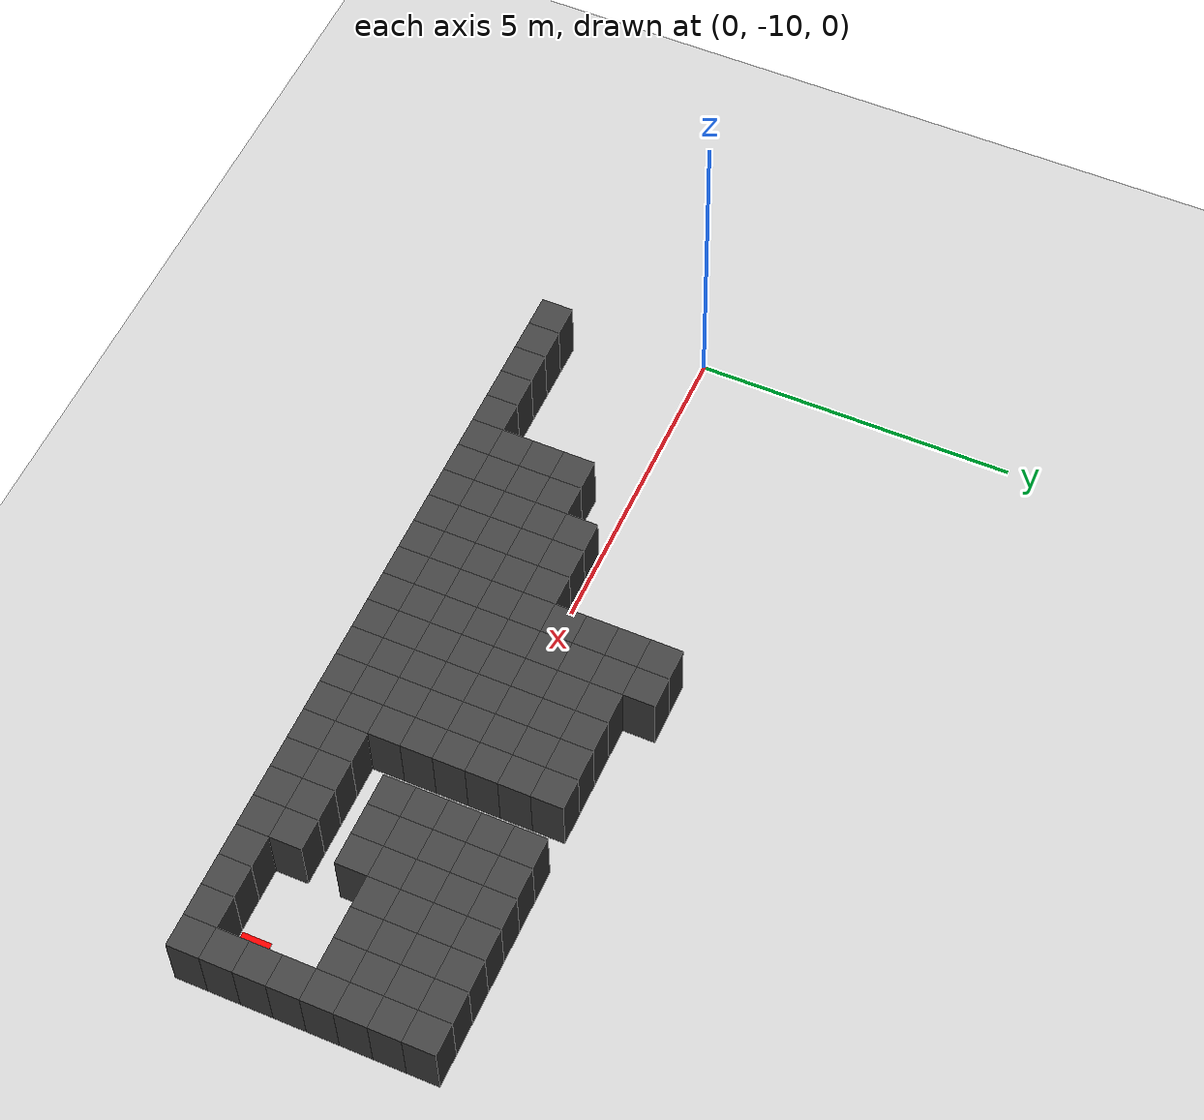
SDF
<sdf version="1.7">
 <world name="map_14495">
  <model name="ground_plane">
   <static>true</static>
   <link name="link">
    <collision name="collision">
     <geometry><plane><normal>0 0 1</normal><size>200 200</size></plane></geometry>
    </collision>
    <visual name="visual">
     <geometry><plane><normal>0 0 1</normal><size>200 200</size></plane></geometry>
     <material><ambient>0.8 0.8 0.8 1</ambient><diffuse>0.8 0.8 0.8 1</diffuse></material>
    </visual>
   </link>
  </model>
  <model name="maze_environment">
   <static>true</static>
   <link name="wall_1471">
    <pose>5.750 -8.250 0.500 0 0 0</pose>
    <collision name="col"><geometry><box><size>0.5 0.5 1.0</size></box></geometry></collision>
    <visual name="vis">
     <geometry><box><size>0.5 0.5 1.0</size></box></geometry>
     <material><ambient>0.15 0.15 0.15 1</ambient><diffuse>0.25 0.25 0.25 1</diffuse></material>
    </visual>
   </link>
   <link name="wall_1472">
    <pose>6.250 -8.250 0.500 0 0 0</pose>
    <collision name="col"><geometry><box><size>0.5 0.5 1.0</size></box></geometry></collision>
    <visual name="vis">
     <geometry><box><size>0.5 0.5 1.0</size></box></geometry>
     <material><ambient>0.15 0.15 0.15 1</ambient><diffuse>0.25 0.25 0.25 1</diffuse></material>
    </visual>
   </link>
   <link name="wall_1502">
    <pose>5.750 -8.750 0.500 0 0 0</pose>
    <collision name="col"><geometry><box><size>0.5 0.5 1.0</size></box></geometry></collision>
    <visual name="vis">
     <geometry><box><size>0.5 0.5 1.0</size></box></geometry>
     <material><ambient>0.15 0.15 0.15 1</ambient><diffuse>0.25 0.25 0.25 1</diffuse></material>
    </visual>
   </link>
   <link name="wall_1503">
    <pose>6.250 -8.750 0.500 0 0 0</pose>
    <collision name="col"><geometry><box><size>0.5 0.5 1.0</size></box></geometry></collision>
    <visual name="vis">
     <geometry><box><size>0.5 0.5 1.0</size></box></geometry>
     <material><ambient>0.15 0.15 0.15 1</ambient><diffuse>0.25 0.25 0.25 1</diffuse></material>
    </visual>
   </link>
   <link name="wall_1504">
    <pose>6.750 -8.750 0.500 0 0 0</pose>
    <collision name="col"><geometry><box><size>0.5 0.5 1.0</size></box></geometry></collision>
    <visual name="vis">
     <geometry><box><size>0.5 0.5 1.0</size></box></geometry>
     <material><ambient>0.15 0.15 0.15 1</ambient><diffuse>0.25 0.25 0.25 1</diffuse></material>
    </visual>
   </link>
   <link name="wall_1505">
    <pose>7.250 -8.750 0.500 0 0 0</pose>
    <collision name="col"><geometry><box><size>0.5 0.5 1.0</size></box></geometry></collision>
    <visual name="vis">
     <geometry><box><size>0.5 0.5 1.0</size></box></geometry>
     <material><ambient>0.15 0.15 0.15 1</ambient><diffuse>0.25 0.25 0.25 1</diffuse></material>
    </visual>
   </link>
   <link name="wall_1506">
    <pose>7.750 -8.750 0.500 0 0 0</pose>
    <collision name="col"><geometry><box><size>0.5 0.5 1.0</size></box></geometry></collision>
    <visual name="vis">
     <geometry><box><size>0.5 0.5 1.0</size></box></geometry>
     <material><ambient>0.15 0.15 0.15 1</ambient><diffuse>0.25 0.25 0.25 1</diffuse></material>
    </visual>
   </link>
   <link name="wall_1507">
    <pose>8.250 -8.750 0.500 0 0 0</pose>
    <collision name="col"><geometry><box><size>0.5 0.5 1.0</size></box></geometry></collision>
    <visual name="vis">
     <geometry><box><size>0.5 0.5 1.0</size></box></geometry>
     <material><ambient>0.15 0.15 0.15 1</ambient><diffuse>0.25 0.25 0.25 1</diffuse></material>
    </visual>
   </link>
   <link name="wall_1508">
    <pose>9.250 -8.750 0.500 0 0 0</pose>
    <collision name="col"><geometry><box><size>0.5 0.5 1.0</size></box></geometry></collision>
    <visual name="vis">
     <geometry><box><size>0.5 0.5 1.0</size></box></geometry>
     <material><ambient>0.15 0.15 0.15 1</ambient><diffuse>0.25 0.25 0.25 1</diffuse></material>
    </visual>
   </link>
   <link name="wall_1509">
    <pose>9.750 -8.750 0.500 0 0 0</pose>
    <collision name="col"><geometry><box><size>0.5 0.5 1.0</size></box></geometry></collision>
    <visual name="vis">
     <geometry><box><size>0.5 0.5 1.0</size></box></geometry>
     <material><ambient>0.15 0.15 0.15 1</ambient><diffuse>0.25 0.25 0.25 1</diffuse></material>
    </visual>
   </link>
   <link name="wall_1510">
    <pose>10.250 -8.750 0.500 0 0 0</pose>
    <collision name="col"><geometry><box><size>0.5 0.5 1.0</size></box></geometry></collision>
    <visual name="vis">
     <geometry><box><size>0.5 0.5 1.0</size></box></geometry>
     <material><ambient>0.15 0.15 0.15 1</ambient><diffuse>0.25 0.25 0.25 1</diffuse></material>
    </visual>
   </link>
   <link name="wall_1511">
    <pose>10.750 -8.750 0.500 0 0 0</pose>
    <collision name="col"><geometry><box><size>0.5 0.5 1.0</size></box></geometry></collision>
    <visual name="vis">
     <geometry><box><size>0.5 0.5 1.0</size></box></geometry>
     <material><ambient>0.15 0.15 0.15 1</ambient><diffuse>0.25 0.25 0.25 1</diffuse></material>
    </visual>
   </link>
   <link name="wall_1512">
    <pose>11.250 -8.750 0.500 0 0 0</pose>
    <collision name="col"><geometry><box><size>0.5 0.5 1.0</size></box></geometry></collision>
    <visual name="vis">
     <geometry><box><size>0.5 0.5 1.0</size></box></geometry>
     <material><ambient>0.15 0.15 0.15 1</ambient><diffuse>0.25 0.25 0.25 1</diffuse></material>
    </visual>
   </link>
   <link name="wall_1513">
    <pose>11.750 -8.750 0.500 0 0 0</pose>
    <collision name="col"><geometry><box><size>0.5 0.5 1.0</size></box></geometry></collision>
    <visual name="vis">
     <geometry><box><size>0.5 0.5 1.0</size></box></geometry>
     <material><ambient>0.15 0.15 0.15 1</ambient><diffuse>0.25 0.25 0.25 1</diffuse></material>
    </visual>
   </link>
   <link name="wall_1514">
    <pose>12.250 -8.750 0.500 0 0 0</pose>
    <collision name="col"><geometry><box><size>0.5 0.5 1.0</size></box></geometry></collision>
    <visual name="vis">
     <geometry><box><size>0.5 0.5 1.0</size></box></geometry>
     <material><ambient>0.15 0.15 0.15 1</ambient><diffuse>0.25 0.25 0.25 1</diffuse></material>
    </visual>
   </link>
   <link name="wall_1533">
    <pose>5.750 -9.250 0.500 0 0 0</pose>
    <collision name="col"><geometry><box><size>0.5 0.5 1.0</size></box></geometry></collision>
    <visual name="vis">
     <geometry><box><size>0.5 0.5 1.0</size></box></geometry>
     <material><ambient>0.15 0.15 0.15 1</ambient><diffuse>0.25 0.25 0.25 1</diffuse></material>
    </visual>
   </link>
   <link name="wall_1534">
    <pose>6.250 -9.250 0.500 0 0 0</pose>
    <collision name="col"><geometry><box><size>0.5 0.5 1.0</size></box></geometry></collision>
    <visual name="vis">
     <geometry><box><size>0.5 0.5 1.0</size></box></geometry>
     <material><ambient>0.15 0.15 0.15 1</ambient><diffuse>0.25 0.25 0.25 1</diffuse></material>
    </visual>
   </link>
   <link name="wall_1535">
    <pose>6.750 -9.250 0.500 0 0 0</pose>
    <collision name="col"><geometry><box><size>0.5 0.5 1.0</size></box></geometry></collision>
    <visual name="vis">
     <geometry><box><size>0.5 0.5 1.0</size></box></geometry>
     <material><ambient>0.15 0.15 0.15 1</ambient><diffuse>0.25 0.25 0.25 1</diffuse></material>
    </visual>
   </link>
   <link name="wall_1536">
    <pose>7.250 -9.250 0.500 0 0 0</pose>
    <collision name="col"><geometry><box><size>0.5 0.5 1.0</size></box></geometry></collision>
    <visual name="vis">
     <geometry><box><size>0.5 0.5 1.0</size></box></geometry>
     <material><ambient>0.15 0.15 0.15 1</ambient><diffuse>0.25 0.25 0.25 1</diffuse></material>
    </visual>
   </link>
   <link name="wall_1537">
    <pose>7.750 -9.250 0.500 0 0 0</pose>
    <collision name="col"><geometry><box><size>0.5 0.5 1.0</size></box></geometry></collision>
    <visual name="vis">
     <geometry><box><size>0.5 0.5 1.0</size></box></geometry>
     <material><ambient>0.15 0.15 0.15 1</ambient><diffuse>0.25 0.25 0.25 1</diffuse></material>
    </visual>
   </link>
   <link name="wall_1538">
    <pose>8.250 -9.250 0.500 0 0 0</pose>
    <collision name="col"><geometry><box><size>0.5 0.5 1.0</size></box></geometry></collision>
    <visual name="vis">
     <geometry><box><size>0.5 0.5 1.0</size></box></geometry>
     <material><ambient>0.15 0.15 0.15 1</ambient><diffuse>0.25 0.25 0.25 1</diffuse></material>
    </visual>
   </link>
   <link name="wall_1539">
    <pose>9.250 -9.250 0.500 0 0 0</pose>
    <collision name="col"><geometry><box><size>0.5 0.5 1.0</size></box></geometry></collision>
    <visual name="vis">
     <geometry><box><size>0.5 0.5 1.0</size></box></geometry>
     <material><ambient>0.15 0.15 0.15 1</ambient><diffuse>0.25 0.25 0.25 1</diffuse></material>
    </visual>
   </link>
   <link name="wall_1540">
    <pose>9.750 -9.250 0.500 0 0 0</pose>
    <collision name="col"><geometry><box><size>0.5 0.5 1.0</size></box></geometry></collision>
    <visual name="vis">
     <geometry><box><size>0.5 0.5 1.0</size></box></geometry>
     <material><ambient>0.15 0.15 0.15 1</ambient><diffuse>0.25 0.25 0.25 1</diffuse></material>
    </visual>
   </link>
   <link name="wall_1541">
    <pose>10.250 -9.250 0.500 0 0 0</pose>
    <collision name="col"><geometry><box><size>0.5 0.5 1.0</size></box></geometry></collision>
    <visual name="vis">
     <geometry><box><size>0.5 0.5 1.0</size></box></geometry>
     <material><ambient>0.15 0.15 0.15 1</ambient><diffuse>0.25 0.25 0.25 1</diffuse></material>
    </visual>
   </link>
   <link name="wall_1542">
    <pose>10.750 -9.250 0.500 0 0 0</pose>
    <collision name="col"><geometry><box><size>0.5 0.5 1.0</size></box></geometry></collision>
    <visual name="vis">
     <geometry><box><size>0.5 0.5 1.0</size></box></geometry>
     <material><ambient>0.15 0.15 0.15 1</ambient><diffuse>0.25 0.25 0.25 1</diffuse></material>
    </visual>
   </link>
   <link name="wall_1543">
    <pose>11.250 -9.250 0.500 0 0 0</pose>
    <collision name="col"><geometry><box><size>0.5 0.5 1.0</size></box></geometry></collision>
    <visual name="vis">
     <geometry><box><size>0.5 0.5 1.0</size></box></geometry>
     <material><ambient>0.15 0.15 0.15 1</ambient><diffuse>0.25 0.25 0.25 1</diffuse></material>
    </visual>
   </link>
   <link name="wall_1544">
    <pose>11.750 -9.250 0.500 0 0 0</pose>
    <collision name="col"><geometry><box><size>0.5 0.5 1.0</size></box></geometry></collision>
    <visual name="vis">
     <geometry><box><size>0.5 0.5 1.0</size></box></geometry>
     <material><ambient>0.15 0.15 0.15 1</ambient><diffuse>0.25 0.25 0.25 1</diffuse></material>
    </visual>
   </link>
   <link name="wall_1545">
    <pose>12.250 -9.250 0.500 0 0 0</pose>
    <collision name="col"><geometry><box><size>0.5 0.5 1.0</size></box></geometry></collision>
    <visual name="vis">
     <geometry><box><size>0.5 0.5 1.0</size></box></geometry>
     <material><ambient>0.15 0.15 0.15 1</ambient><diffuse>0.25 0.25 0.25 1</diffuse></material>
    </visual>
   </link>
   <link name="wall_1563">
    <pose>5.750 -9.750 0.500 0 0 0</pose>
    <collision name="col"><geometry><box><size>0.5 0.5 1.0</size></box></geometry></collision>
    <visual name="vis">
     <geometry><box><size>0.5 0.5 1.0</size></box></geometry>
     <material><ambient>0.15 0.15 0.15 1</ambient><diffuse>0.25 0.25 0.25 1</diffuse></material>
    </visual>
   </link>
   <link name="wall_1564">
    <pose>6.250 -9.750 0.500 0 0 0</pose>
    <collision name="col"><geometry><box><size>0.5 0.5 1.0</size></box></geometry></collision>
    <visual name="vis">
     <geometry><box><size>0.5 0.5 1.0</size></box></geometry>
     <material><ambient>0.15 0.15 0.15 1</ambient><diffuse>0.25 0.25 0.25 1</diffuse></material>
    </visual>
   </link>
   <link name="wall_1565">
    <pose>6.750 -9.750 0.500 0 0 0</pose>
    <collision name="col"><geometry><box><size>0.5 0.5 1.0</size></box></geometry></collision>
    <visual name="vis">
     <geometry><box><size>0.5 0.5 1.0</size></box></geometry>
     <material><ambient>0.15 0.15 0.15 1</ambient><diffuse>0.25 0.25 0.25 1</diffuse></material>
    </visual>
   </link>
   <link name="wall_1566">
    <pose>7.250 -9.750 0.500 0 0 0</pose>
    <collision name="col"><geometry><box><size>0.5 0.5 1.0</size></box></geometry></collision>
    <visual name="vis">
     <geometry><box><size>0.5 0.5 1.0</size></box></geometry>
     <material><ambient>0.15 0.15 0.15 1</ambient><diffuse>0.25 0.25 0.25 1</diffuse></material>
    </visual>
   </link>
   <link name="wall_1567">
    <pose>7.750 -9.750 0.500 0 0 0</pose>
    <collision name="col"><geometry><box><size>0.5 0.5 1.0</size></box></geometry></collision>
    <visual name="vis">
     <geometry><box><size>0.5 0.5 1.0</size></box></geometry>
     <material><ambient>0.15 0.15 0.15 1</ambient><diffuse>0.25 0.25 0.25 1</diffuse></material>
    </visual>
   </link>
   <link name="wall_1568">
    <pose>8.250 -9.750 0.500 0 0 0</pose>
    <collision name="col"><geometry><box><size>0.5 0.5 1.0</size></box></geometry></collision>
    <visual name="vis">
     <geometry><box><size>0.5 0.5 1.0</size></box></geometry>
     <material><ambient>0.15 0.15 0.15 1</ambient><diffuse>0.25 0.25 0.25 1</diffuse></material>
    </visual>
   </link>
   <link name="wall_1569">
    <pose>9.250 -9.750 0.500 0 0 0</pose>
    <collision name="col"><geometry><box><size>0.5 0.5 1.0</size></box></geometry></collision>
    <visual name="vis">
     <geometry><box><size>0.5 0.5 1.0</size></box></geometry>
     <material><ambient>0.15 0.15 0.15 1</ambient><diffuse>0.25 0.25 0.25 1</diffuse></material>
    </visual>
   </link>
   <link name="wall_1570">
    <pose>9.750 -9.750 0.500 0 0 0</pose>
    <collision name="col"><geometry><box><size>0.5 0.5 1.0</size></box></geometry></collision>
    <visual name="vis">
     <geometry><box><size>0.5 0.5 1.0</size></box></geometry>
     <material><ambient>0.15 0.15 0.15 1</ambient><diffuse>0.25 0.25 0.25 1</diffuse></material>
    </visual>
   </link>
   <link name="wall_1571">
    <pose>10.250 -9.750 0.500 0 0 0</pose>
    <collision name="col"><geometry><box><size>0.5 0.5 1.0</size></box></geometry></collision>
    <visual name="vis">
     <geometry><box><size>0.5 0.5 1.0</size></box></geometry>
     <material><ambient>0.15 0.15 0.15 1</ambient><diffuse>0.25 0.25 0.25 1</diffuse></material>
    </visual>
   </link>
   <link name="wall_1572">
    <pose>10.750 -9.750 0.500 0 0 0</pose>
    <collision name="col"><geometry><box><size>0.5 0.5 1.0</size></box></geometry></collision>
    <visual name="vis">
     <geometry><box><size>0.5 0.5 1.0</size></box></geometry>
     <material><ambient>0.15 0.15 0.15 1</ambient><diffuse>0.25 0.25 0.25 1</diffuse></material>
    </visual>
   </link>
   <link name="wall_1573">
    <pose>11.250 -9.750 0.500 0 0 0</pose>
    <collision name="col"><geometry><box><size>0.5 0.5 1.0</size></box></geometry></collision>
    <visual name="vis">
     <geometry><box><size>0.5 0.5 1.0</size></box></geometry>
     <material><ambient>0.15 0.15 0.15 1</ambient><diffuse>0.25 0.25 0.25 1</diffuse></material>
    </visual>
   </link>
   <link name="wall_1574">
    <pose>11.750 -9.750 0.500 0 0 0</pose>
    <collision name="col"><geometry><box><size>0.5 0.5 1.0</size></box></geometry></collision>
    <visual name="vis">
     <geometry><box><size>0.5 0.5 1.0</size></box></geometry>
     <material><ambient>0.15 0.15 0.15 1</ambient><diffuse>0.25 0.25 0.25 1</diffuse></material>
    </visual>
   </link>
   <link name="wall_1575">
    <pose>12.250 -9.750 0.500 0 0 0</pose>
    <collision name="col"><geometry><box><size>0.5 0.5 1.0</size></box></geometry></collision>
    <visual name="vis">
     <geometry><box><size>0.5 0.5 1.0</size></box></geometry>
     <material><ambient>0.15 0.15 0.15 1</ambient><diffuse>0.25 0.25 0.25 1</diffuse></material>
    </visual>
   </link>
   <link name="wall_1593">
    <pose>4.250 -10.250 0.500 0 0 0</pose>
    <collision name="col"><geometry><box><size>0.5 0.5 1.0</size></box></geometry></collision>
    <visual name="vis">
     <geometry><box><size>0.5 0.5 1.0</size></box></geometry>
     <material><ambient>0.15 0.15 0.15 1</ambient><diffuse>0.25 0.25 0.25 1</diffuse></material>
    </visual>
   </link>
   <link name="wall_1594">
    <pose>4.750 -10.250 0.500 0 0 0</pose>
    <collision name="col"><geometry><box><size>0.5 0.5 1.0</size></box></geometry></collision>
    <visual name="vis">
     <geometry><box><size>0.5 0.5 1.0</size></box></geometry>
     <material><ambient>0.15 0.15 0.15 1</ambient><diffuse>0.25 0.25 0.25 1</diffuse></material>
    </visual>
   </link>
   <link name="wall_1595">
    <pose>5.250 -10.250 0.500 0 0 0</pose>
    <collision name="col"><geometry><box><size>0.5 0.5 1.0</size></box></geometry></collision>
    <visual name="vis">
     <geometry><box><size>0.5 0.5 1.0</size></box></geometry>
     <material><ambient>0.15 0.15 0.15 1</ambient><diffuse>0.25 0.25 0.25 1</diffuse></material>
    </visual>
   </link>
   <link name="wall_1596">
    <pose>5.750 -10.250 0.500 0 0 0</pose>
    <collision name="col"><geometry><box><size>0.5 0.5 1.0</size></box></geometry></collision>
    <visual name="vis">
     <geometry><box><size>0.5 0.5 1.0</size></box></geometry>
     <material><ambient>0.15 0.15 0.15 1</ambient><diffuse>0.25 0.25 0.25 1</diffuse></material>
    </visual>
   </link>
   <link name="wall_1597">
    <pose>6.250 -10.250 0.500 0 0 0</pose>
    <collision name="col"><geometry><box><size>0.5 0.5 1.0</size></box></geometry></collision>
    <visual name="vis">
     <geometry><box><size>0.5 0.5 1.0</size></box></geometry>
     <material><ambient>0.15 0.15 0.15 1</ambient><diffuse>0.25 0.25 0.25 1</diffuse></material>
    </visual>
   </link>
   <link name="wall_1598">
    <pose>6.750 -10.250 0.500 0 0 0</pose>
    <collision name="col"><geometry><box><size>0.5 0.5 1.0</size></box></geometry></collision>
    <visual name="vis">
     <geometry><box><size>0.5 0.5 1.0</size></box></geometry>
     <material><ambient>0.15 0.15 0.15 1</ambient><diffuse>0.25 0.25 0.25 1</diffuse></material>
    </visual>
   </link>
   <link name="wall_1599">
    <pose>7.250 -10.250 0.500 0 0 0</pose>
    <collision name="col"><geometry><box><size>0.5 0.5 1.0</size></box></geometry></collision>
    <visual name="vis">
     <geometry><box><size>0.5 0.5 1.0</size></box></geometry>
     <material><ambient>0.15 0.15 0.15 1</ambient><diffuse>0.25 0.25 0.25 1</diffuse></material>
    </visual>
   </link>
   <link name="wall_1600">
    <pose>7.750 -10.250 0.500 0 0 0</pose>
    <collision name="col"><geometry><box><size>0.5 0.5 1.0</size></box></geometry></collision>
    <visual name="vis">
     <geometry><box><size>0.5 0.5 1.0</size></box></geometry>
     <material><ambient>0.15 0.15 0.15 1</ambient><diffuse>0.25 0.25 0.25 1</diffuse></material>
    </visual>
   </link>
   <link name="wall_1601">
    <pose>8.250 -10.250 0.500 0 0 0</pose>
    <collision name="col"><geometry><box><size>0.5 0.5 1.0</size></box></geometry></collision>
    <visual name="vis">
     <geometry><box><size>0.5 0.5 1.0</size></box></geometry>
     <material><ambient>0.15 0.15 0.15 1</ambient><diffuse>0.25 0.25 0.25 1</diffuse></material>
    </visual>
   </link>
   <link name="wall_1602">
    <pose>9.250 -10.250 0.500 0 0 0</pose>
    <collision name="col"><geometry><box><size>0.5 0.5 1.0</size></box></geometry></collision>
    <visual name="vis">
     <geometry><box><size>0.5 0.5 1.0</size></box></geometry>
     <material><ambient>0.15 0.15 0.15 1</ambient><diffuse>0.25 0.25 0.25 1</diffuse></material>
    </visual>
   </link>
   <link name="wall_1603">
    <pose>9.750 -10.250 0.500 0 0 0</pose>
    <collision name="col"><geometry><box><size>0.5 0.5 1.0</size></box></geometry></collision>
    <visual name="vis">
     <geometry><box><size>0.5 0.5 1.0</size></box></geometry>
     <material><ambient>0.15 0.15 0.15 1</ambient><diffuse>0.25 0.25 0.25 1</diffuse></material>
    </visual>
   </link>
   <link name="wall_1604">
    <pose>10.250 -10.250 0.500 0 0 0</pose>
    <collision name="col"><geometry><box><size>0.5 0.5 1.0</size></box></geometry></collision>
    <visual name="vis">
     <geometry><box><size>0.5 0.5 1.0</size></box></geometry>
     <material><ambient>0.15 0.15 0.15 1</ambient><diffuse>0.25 0.25 0.25 1</diffuse></material>
    </visual>
   </link>
   <link name="wall_1605">
    <pose>10.750 -10.250 0.500 0 0 0</pose>
    <collision name="col"><geometry><box><size>0.5 0.5 1.0</size></box></geometry></collision>
    <visual name="vis">
     <geometry><box><size>0.5 0.5 1.0</size></box></geometry>
     <material><ambient>0.15 0.15 0.15 1</ambient><diffuse>0.25 0.25 0.25 1</diffuse></material>
    </visual>
   </link>
   <link name="wall_1606">
    <pose>11.250 -10.250 0.500 0 0 0</pose>
    <collision name="col"><geometry><box><size>0.5 0.5 1.0</size></box></geometry></collision>
    <visual name="vis">
     <geometry><box><size>0.5 0.5 1.0</size></box></geometry>
     <material><ambient>0.15 0.15 0.15 1</ambient><diffuse>0.25 0.25 0.25 1</diffuse></material>
    </visual>
   </link>
   <link name="wall_1607">
    <pose>11.750 -10.250 0.500 0 0 0</pose>
    <collision name="col"><geometry><box><size>0.5 0.5 1.0</size></box></geometry></collision>
    <visual name="vis">
     <geometry><box><size>0.5 0.5 1.0</size></box></geometry>
     <material><ambient>0.15 0.15 0.15 1</ambient><diffuse>0.25 0.25 0.25 1</diffuse></material>
    </visual>
   </link>
   <link name="wall_1608">
    <pose>12.250 -10.250 0.500 0 0 0</pose>
    <collision name="col"><geometry><box><size>0.5 0.5 1.0</size></box></geometry></collision>
    <visual name="vis">
     <geometry><box><size>0.5 0.5 1.0</size></box></geometry>
     <material><ambient>0.15 0.15 0.15 1</ambient><diffuse>0.25 0.25 0.25 1</diffuse></material>
    </visual>
   </link>
   <link name="wall_1626">
    <pose>3.250 -10.750 0.500 0 0 0</pose>
    <collision name="col"><geometry><box><size>0.5 0.5 1.0</size></box></geometry></collision>
    <visual name="vis">
     <geometry><box><size>0.5 0.5 1.0</size></box></geometry>
     <material><ambient>0.15 0.15 0.15 1</ambient><diffuse>0.25 0.25 0.25 1</diffuse></material>
    </visual>
   </link>
   <link name="wall_1627">
    <pose>3.750 -10.750 0.500 0 0 0</pose>
    <collision name="col"><geometry><box><size>0.5 0.5 1.0</size></box></geometry></collision>
    <visual name="vis">
     <geometry><box><size>0.5 0.5 1.0</size></box></geometry>
     <material><ambient>0.15 0.15 0.15 1</ambient><diffuse>0.25 0.25 0.25 1</diffuse></material>
    </visual>
   </link>
   <link name="wall_1628">
    <pose>4.250 -10.750 0.500 0 0 0</pose>
    <collision name="col"><geometry><box><size>0.5 0.5 1.0</size></box></geometry></collision>
    <visual name="vis">
     <geometry><box><size>0.5 0.5 1.0</size></box></geometry>
     <material><ambient>0.15 0.15 0.15 1</ambient><diffuse>0.25 0.25 0.25 1</diffuse></material>
    </visual>
   </link>
   <link name="wall_1629">
    <pose>4.750 -10.750 0.500 0 0 0</pose>
    <collision name="col"><geometry><box><size>0.5 0.5 1.0</size></box></geometry></collision>
    <visual name="vis">
     <geometry><box><size>0.5 0.5 1.0</size></box></geometry>
     <material><ambient>0.15 0.15 0.15 1</ambient><diffuse>0.25 0.25 0.25 1</diffuse></material>
    </visual>
   </link>
   <link name="wall_1630">
    <pose>5.250 -10.750 0.500 0 0 0</pose>
    <collision name="col"><geometry><box><size>0.5 0.5 1.0</size></box></geometry></collision>
    <visual name="vis">
     <geometry><box><size>0.5 0.5 1.0</size></box></geometry>
     <material><ambient>0.15 0.15 0.15 1</ambient><diffuse>0.25 0.25 0.25 1</diffuse></material>
    </visual>
   </link>
   <link name="wall_1631">
    <pose>5.750 -10.750 0.500 0 0 0</pose>
    <collision name="col"><geometry><box><size>0.5 0.5 1.0</size></box></geometry></collision>
    <visual name="vis">
     <geometry><box><size>0.5 0.5 1.0</size></box></geometry>
     <material><ambient>0.15 0.15 0.15 1</ambient><diffuse>0.25 0.25 0.25 1</diffuse></material>
    </visual>
   </link>
   <link name="wall_1632">
    <pose>6.250 -10.750 0.500 0 0 0</pose>
    <collision name="col"><geometry><box><size>0.5 0.5 1.0</size></box></geometry></collision>
    <visual name="vis">
     <geometry><box><size>0.5 0.5 1.0</size></box></geometry>
     <material><ambient>0.15 0.15 0.15 1</ambient><diffuse>0.25 0.25 0.25 1</diffuse></material>
    </visual>
   </link>
   <link name="wall_1633">
    <pose>6.750 -10.750 0.500 0 0 0</pose>
    <collision name="col"><geometry><box><size>0.5 0.5 1.0</size></box></geometry></collision>
    <visual name="vis">
     <geometry><box><size>0.5 0.5 1.0</size></box></geometry>
     <material><ambient>0.15 0.15 0.15 1</ambient><diffuse>0.25 0.25 0.25 1</diffuse></material>
    </visual>
   </link>
   <link name="wall_1634">
    <pose>7.250 -10.750 0.500 0 0 0</pose>
    <collision name="col"><geometry><box><size>0.5 0.5 1.0</size></box></geometry></collision>
    <visual name="vis">
     <geometry><box><size>0.5 0.5 1.0</size></box></geometry>
     <material><ambient>0.15 0.15 0.15 1</ambient><diffuse>0.25 0.25 0.25 1</diffuse></material>
    </visual>
   </link>
   <link name="wall_1635">
    <pose>7.750 -10.750 0.500 0 0 0</pose>
    <collision name="col"><geometry><box><size>0.5 0.5 1.0</size></box></geometry></collision>
    <visual name="vis">
     <geometry><box><size>0.5 0.5 1.0</size></box></geometry>
     <material><ambient>0.15 0.15 0.15 1</ambient><diffuse>0.25 0.25 0.25 1</diffuse></material>
    </visual>
   </link>
   <link name="wall_1636">
    <pose>8.250 -10.750 0.500 0 0 0</pose>
    <collision name="col"><geometry><box><size>0.5 0.5 1.0</size></box></geometry></collision>
    <visual name="vis">
     <geometry><box><size>0.5 0.5 1.0</size></box></geometry>
     <material><ambient>0.15 0.15 0.15 1</ambient><diffuse>0.25 0.25 0.25 1</diffuse></material>
    </visual>
   </link>
   <link name="wall_1637">
    <pose>9.250 -10.750 0.500 0 0 0</pose>
    <collision name="col"><geometry><box><size>0.5 0.5 1.0</size></box></geometry></collision>
    <visual name="vis">
     <geometry><box><size>0.5 0.5 1.0</size></box></geometry>
     <material><ambient>0.15 0.15 0.15 1</ambient><diffuse>0.25 0.25 0.25 1</diffuse></material>
    </visual>
   </link>
   <link name="wall_1638">
    <pose>9.750 -10.750 0.500 0 0 0</pose>
    <collision name="col"><geometry><box><size>0.5 0.5 1.0</size></box></geometry></collision>
    <visual name="vis">
     <geometry><box><size>0.5 0.5 1.0</size></box></geometry>
     <material><ambient>0.15 0.15 0.15 1</ambient><diffuse>0.25 0.25 0.25 1</diffuse></material>
    </visual>
   </link>
   <link name="wall_1639">
    <pose>10.250 -10.750 0.500 0 0 0</pose>
    <collision name="col"><geometry><box><size>0.5 0.5 1.0</size></box></geometry></collision>
    <visual name="vis">
     <geometry><box><size>0.5 0.5 1.0</size></box></geometry>
     <material><ambient>0.15 0.15 0.15 1</ambient><diffuse>0.25 0.25 0.25 1</diffuse></material>
    </visual>
   </link>
   <link name="wall_1640">
    <pose>12.250 -10.750 0.500 0 0 0</pose>
    <collision name="col"><geometry><box><size>0.5 0.5 1.0</size></box></geometry></collision>
    <visual name="vis">
     <geometry><box><size>0.5 0.5 1.0</size></box></geometry>
     <material><ambient>0.15 0.15 0.15 1</ambient><diffuse>0.25 0.25 0.25 1</diffuse></material>
    </visual>
   </link>
   <link name="wall_1659">
    <pose>3.250 -11.250 0.500 0 0 0</pose>
    <collision name="col"><geometry><box><size>0.5 0.5 1.0</size></box></geometry></collision>
    <visual name="vis">
     <geometry><box><size>0.5 0.5 1.0</size></box></geometry>
     <material><ambient>0.15 0.15 0.15 1</ambient><diffuse>0.25 0.25 0.25 1</diffuse></material>
    </visual>
   </link>
   <link name="wall_1660">
    <pose>3.750 -11.250 0.500 0 0 0</pose>
    <collision name="col"><geometry><box><size>0.5 0.5 1.0</size></box></geometry></collision>
    <visual name="vis">
     <geometry><box><size>0.5 0.5 1.0</size></box></geometry>
     <material><ambient>0.15 0.15 0.15 1</ambient><diffuse>0.25 0.25 0.25 1</diffuse></material>
    </visual>
   </link>
   <link name="wall_1661">
    <pose>4.250 -11.250 0.500 0 0 0</pose>
    <collision name="col"><geometry><box><size>0.5 0.5 1.0</size></box></geometry></collision>
    <visual name="vis">
     <geometry><box><size>0.5 0.5 1.0</size></box></geometry>
     <material><ambient>0.15 0.15 0.15 1</ambient><diffuse>0.25 0.25 0.25 1</diffuse></material>
    </visual>
   </link>
   <link name="wall_1662">
    <pose>4.750 -11.250 0.500 0 0 0</pose>
    <collision name="col"><geometry><box><size>0.5 0.5 1.0</size></box></geometry></collision>
    <visual name="vis">
     <geometry><box><size>0.5 0.5 1.0</size></box></geometry>
     <material><ambient>0.15 0.15 0.15 1</ambient><diffuse>0.25 0.25 0.25 1</diffuse></material>
    </visual>
   </link>
   <link name="wall_1663">
    <pose>5.250 -11.250 0.500 0 0 0</pose>
    <collision name="col"><geometry><box><size>0.5 0.5 1.0</size></box></geometry></collision>
    <visual name="vis">
     <geometry><box><size>0.5 0.5 1.0</size></box></geometry>
     <material><ambient>0.15 0.15 0.15 1</ambient><diffuse>0.25 0.25 0.25 1</diffuse></material>
    </visual>
   </link>
   <link name="wall_1664">
    <pose>5.750 -11.250 0.500 0 0 0</pose>
    <collision name="col"><geometry><box><size>0.5 0.5 1.0</size></box></geometry></collision>
    <visual name="vis">
     <geometry><box><size>0.5 0.5 1.0</size></box></geometry>
     <material><ambient>0.15 0.15 0.15 1</ambient><diffuse>0.25 0.25 0.25 1</diffuse></material>
    </visual>
   </link>
   <link name="wall_1665">
    <pose>6.250 -11.250 0.500 0 0 0</pose>
    <collision name="col"><geometry><box><size>0.5 0.5 1.0</size></box></geometry></collision>
    <visual name="vis">
     <geometry><box><size>0.5 0.5 1.0</size></box></geometry>
     <material><ambient>0.15 0.15 0.15 1</ambient><diffuse>0.25 0.25 0.25 1</diffuse></material>
    </visual>
   </link>
   <link name="wall_1666">
    <pose>6.750 -11.250 0.500 0 0 0</pose>
    <collision name="col"><geometry><box><size>0.5 0.5 1.0</size></box></geometry></collision>
    <visual name="vis">
     <geometry><box><size>0.5 0.5 1.0</size></box></geometry>
     <material><ambient>0.15 0.15 0.15 1</ambient><diffuse>0.25 0.25 0.25 1</diffuse></material>
    </visual>
   </link>
   <link name="wall_1667">
    <pose>7.250 -11.250 0.500 0 0 0</pose>
    <collision name="col"><geometry><box><size>0.5 0.5 1.0</size></box></geometry></collision>
    <visual name="vis">
     <geometry><box><size>0.5 0.5 1.0</size></box></geometry>
     <material><ambient>0.15 0.15 0.15 1</ambient><diffuse>0.25 0.25 0.25 1</diffuse></material>
    </visual>
   </link>
   <link name="wall_1668">
    <pose>7.750 -11.250 0.500 0 0 0</pose>
    <collision name="col"><geometry><box><size>0.5 0.5 1.0</size></box></geometry></collision>
    <visual name="vis">
     <geometry><box><size>0.5 0.5 1.0</size></box></geometry>
     <material><ambient>0.15 0.15 0.15 1</ambient><diffuse>0.25 0.25 0.25 1</diffuse></material>
    </visual>
   </link>
   <link name="wall_1669">
    <pose>8.250 -11.250 0.500 0 0 0</pose>
    <collision name="col"><geometry><box><size>0.5 0.5 1.0</size></box></geometry></collision>
    <visual name="vis">
     <geometry><box><size>0.5 0.5 1.0</size></box></geometry>
     <material><ambient>0.15 0.15 0.15 1</ambient><diffuse>0.25 0.25 0.25 1</diffuse></material>
    </visual>
   </link>
   <link name="wall_1670">
    <pose>12.250 -11.250 0.500 0 0 0</pose>
    <collision name="col"><geometry><box><size>0.5 0.5 1.0</size></box></geometry></collision>
    <visual name="vis">
     <geometry><box><size>0.5 0.5 1.0</size></box></geometry>
     <material><ambient>0.15 0.15 0.15 1</ambient><diffuse>0.25 0.25 0.25 1</diffuse></material>
    </visual>
   </link>
   <link name="wall_1689">
    <pose>3.250 -11.750 0.500 0 0 0</pose>
    <collision name="col"><geometry><box><size>0.5 0.5 1.0</size></box></geometry></collision>
    <visual name="vis">
     <geometry><box><size>0.5 0.5 1.0</size></box></geometry>
     <material><ambient>0.15 0.15 0.15 1</ambient><diffuse>0.25 0.25 0.25 1</diffuse></material>
    </visual>
   </link>
   <link name="wall_1690">
    <pose>3.750 -11.750 0.500 0 0 0</pose>
    <collision name="col"><geometry><box><size>0.5 0.5 1.0</size></box></geometry></collision>
    <visual name="vis">
     <geometry><box><size>0.5 0.5 1.0</size></box></geometry>
     <material><ambient>0.15 0.15 0.15 1</ambient><diffuse>0.25 0.25 0.25 1</diffuse></material>
    </visual>
   </link>
   <link name="wall_1691">
    <pose>4.250 -11.750 0.500 0 0 0</pose>
    <collision name="col"><geometry><box><size>0.5 0.5 1.0</size></box></geometry></collision>
    <visual name="vis">
     <geometry><box><size>0.5 0.5 1.0</size></box></geometry>
     <material><ambient>0.15 0.15 0.15 1</ambient><diffuse>0.25 0.25 0.25 1</diffuse></material>
    </visual>
   </link>
   <link name="wall_1692">
    <pose>4.750 -11.750 0.500 0 0 0</pose>
    <collision name="col"><geometry><box><size>0.5 0.5 1.0</size></box></geometry></collision>
    <visual name="vis">
     <geometry><box><size>0.5 0.5 1.0</size></box></geometry>
     <material><ambient>0.15 0.15 0.15 1</ambient><diffuse>0.25 0.25 0.25 1</diffuse></material>
    </visual>
   </link>
   <link name="wall_1693">
    <pose>5.250 -11.750 0.500 0 0 0</pose>
    <collision name="col"><geometry><box><size>0.5 0.5 1.0</size></box></geometry></collision>
    <visual name="vis">
     <geometry><box><size>0.5 0.5 1.0</size></box></geometry>
     <material><ambient>0.15 0.15 0.15 1</ambient><diffuse>0.25 0.25 0.25 1</diffuse></material>
    </visual>
   </link>
   <link name="wall_1694">
    <pose>5.750 -11.750 0.500 0 0 0</pose>
    <collision name="col"><geometry><box><size>0.5 0.5 1.0</size></box></geometry></collision>
    <visual name="vis">
     <geometry><box><size>0.5 0.5 1.0</size></box></geometry>
     <material><ambient>0.15 0.15 0.15 1</ambient><diffuse>0.25 0.25 0.25 1</diffuse></material>
    </visual>
   </link>
   <link name="wall_1695">
    <pose>6.250 -11.750 0.500 0 0 0</pose>
    <collision name="col"><geometry><box><size>0.5 0.5 1.0</size></box></geometry></collision>
    <visual name="vis">
     <geometry><box><size>0.5 0.5 1.0</size></box></geometry>
     <material><ambient>0.15 0.15 0.15 1</ambient><diffuse>0.25 0.25 0.25 1</diffuse></material>
    </visual>
   </link>
   <link name="wall_1696">
    <pose>6.750 -11.750 0.500 0 0 0</pose>
    <collision name="col"><geometry><box><size>0.5 0.5 1.0</size></box></geometry></collision>
    <visual name="vis">
     <geometry><box><size>0.5 0.5 1.0</size></box></geometry>
     <material><ambient>0.15 0.15 0.15 1</ambient><diffuse>0.25 0.25 0.25 1</diffuse></material>
    </visual>
   </link>
   <link name="wall_1697">
    <pose>7.250 -11.750 0.500 0 0 0</pose>
    <collision name="col"><geometry><box><size>0.5 0.5 1.0</size></box></geometry></collision>
    <visual name="vis">
     <geometry><box><size>0.5 0.5 1.0</size></box></geometry>
     <material><ambient>0.15 0.15 0.15 1</ambient><diffuse>0.25 0.25 0.25 1</diffuse></material>
    </visual>
   </link>
   <link name="wall_1698">
    <pose>7.750 -11.750 0.500 0 0 0</pose>
    <collision name="col"><geometry><box><size>0.5 0.5 1.0</size></box></geometry></collision>
    <visual name="vis">
     <geometry><box><size>0.5 0.5 1.0</size></box></geometry>
     <material><ambient>0.15 0.15 0.15 1</ambient><diffuse>0.25 0.25 0.25 1</diffuse></material>
    </visual>
   </link>
   <link name="wall_1699">
    <pose>8.250 -11.750 0.500 0 0 0</pose>
    <collision name="col"><geometry><box><size>0.5 0.5 1.0</size></box></geometry></collision>
    <visual name="vis">
     <geometry><box><size>0.5 0.5 1.0</size></box></geometry>
     <material><ambient>0.15 0.15 0.15 1</ambient><diffuse>0.25 0.25 0.25 1</diffuse></material>
    </visual>
   </link>
   <link name="wall_1700">
    <pose>8.750 -11.750 0.500 0 0 0</pose>
    <collision name="col"><geometry><box><size>0.5 0.5 1.0</size></box></geometry></collision>
    <visual name="vis">
     <geometry><box><size>0.5 0.5 1.0</size></box></geometry>
     <material><ambient>0.15 0.15 0.15 1</ambient><diffuse>0.25 0.25 0.25 1</diffuse></material>
    </visual>
   </link>
   <link name="wall_1701">
    <pose>9.250 -11.750 0.500 0 0 0</pose>
    <collision name="col"><geometry><box><size>0.5 0.5 1.0</size></box></geometry></collision>
    <visual name="vis">
     <geometry><box><size>0.5 0.5 1.0</size></box></geometry>
     <material><ambient>0.15 0.15 0.15 1</ambient><diffuse>0.25 0.25 0.25 1</diffuse></material>
    </visual>
   </link>
   <link name="wall_1702">
    <pose>9.750 -11.750 0.500 0 0 0</pose>
    <collision name="col"><geometry><box><size>0.5 0.5 1.0</size></box></geometry></collision>
    <visual name="vis">
     <geometry><box><size>0.5 0.5 1.0</size></box></geometry>
     <material><ambient>0.15 0.15 0.15 1</ambient><diffuse>0.25 0.25 0.25 1</diffuse></material>
    </visual>
   </link>
   <link name="wall_1703">
    <pose>10.250 -11.750 0.500 0 0 0</pose>
    <collision name="col"><geometry><box><size>0.5 0.5 1.0</size></box></geometry></collision>
    <visual name="vis">
     <geometry><box><size>0.5 0.5 1.0</size></box></geometry>
     <material><ambient>0.15 0.15 0.15 1</ambient><diffuse>0.25 0.25 0.25 1</diffuse></material>
    </visual>
   </link>
   <link name="wall_1704">
    <pose>12.250 -11.750 0.500 0 0 0</pose>
    <collision name="col"><geometry><box><size>0.5 0.5 1.0</size></box></geometry></collision>
    <visual name="vis">
     <geometry><box><size>0.5 0.5 1.0</size></box></geometry>
     <material><ambient>0.15 0.15 0.15 1</ambient><diffuse>0.25 0.25 0.25 1</diffuse></material>
    </visual>
   </link>
   <link name="wall_1731">
    <pose>0.750 -12.250 0.500 0 0 0</pose>
    <collision name="col"><geometry><box><size>0.5 0.5 1.0</size></box></geometry></collision>
    <visual name="vis">
     <geometry><box><size>0.5 0.5 1.0</size></box></geometry>
     <material><ambient>0.15 0.15 0.15 1</ambient><diffuse>0.25 0.25 0.25 1</diffuse></material>
    </visual>
   </link>
   <link name="wall_1732">
    <pose>1.250 -12.250 0.500 0 0 0</pose>
    <collision name="col"><geometry><box><size>0.5 0.5 1.0</size></box></geometry></collision>
    <visual name="vis">
     <geometry><box><size>0.5 0.5 1.0</size></box></geometry>
     <material><ambient>0.15 0.15 0.15 1</ambient><diffuse>0.25 0.25 0.25 1</diffuse></material>
    </visual>
   </link>
   <link name="wall_1733">
    <pose>1.750 -12.250 0.500 0 0 0</pose>
    <collision name="col"><geometry><box><size>0.5 0.5 1.0</size></box></geometry></collision>
    <visual name="vis">
     <geometry><box><size>0.5 0.5 1.0</size></box></geometry>
     <material><ambient>0.15 0.15 0.15 1</ambient><diffuse>0.25 0.25 0.25 1</diffuse></material>
    </visual>
   </link>
   <link name="wall_1734">
    <pose>2.250 -12.250 0.500 0 0 0</pose>
    <collision name="col"><geometry><box><size>0.5 0.5 1.0</size></box></geometry></collision>
    <visual name="vis">
     <geometry><box><size>0.5 0.5 1.0</size></box></geometry>
     <material><ambient>0.15 0.15 0.15 1</ambient><diffuse>0.25 0.25 0.25 1</diffuse></material>
    </visual>
   </link>
   <link name="wall_1735">
    <pose>2.750 -12.250 0.500 0 0 0</pose>
    <collision name="col"><geometry><box><size>0.5 0.5 1.0</size></box></geometry></collision>
    <visual name="vis">
     <geometry><box><size>0.5 0.5 1.0</size></box></geometry>
     <material><ambient>0.15 0.15 0.15 1</ambient><diffuse>0.25 0.25 0.25 1</diffuse></material>
    </visual>
   </link>
   <link name="wall_1736">
    <pose>3.250 -12.250 0.500 0 0 0</pose>
    <collision name="col"><geometry><box><size>0.5 0.5 1.0</size></box></geometry></collision>
    <visual name="vis">
     <geometry><box><size>0.5 0.5 1.0</size></box></geometry>
     <material><ambient>0.15 0.15 0.15 1</ambient><diffuse>0.25 0.25 0.25 1</diffuse></material>
    </visual>
   </link>
   <link name="wall_1737">
    <pose>3.750 -12.250 0.500 0 0 0</pose>
    <collision name="col"><geometry><box><size>0.5 0.5 1.0</size></box></geometry></collision>
    <visual name="vis">
     <geometry><box><size>0.5 0.5 1.0</size></box></geometry>
     <material><ambient>0.15 0.15 0.15 1</ambient><diffuse>0.25 0.25 0.25 1</diffuse></material>
    </visual>
   </link>
   <link name="wall_1738">
    <pose>4.250 -12.250 0.500 0 0 0</pose>
    <collision name="col"><geometry><box><size>0.5 0.5 1.0</size></box></geometry></collision>
    <visual name="vis">
     <geometry><box><size>0.5 0.5 1.0</size></box></geometry>
     <material><ambient>0.15 0.15 0.15 1</ambient><diffuse>0.25 0.25 0.25 1</diffuse></material>
    </visual>
   </link>
   <link name="wall_1739">
    <pose>4.750 -12.250 0.500 0 0 0</pose>
    <collision name="col"><geometry><box><size>0.5 0.5 1.0</size></box></geometry></collision>
    <visual name="vis">
     <geometry><box><size>0.5 0.5 1.0</size></box></geometry>
     <material><ambient>0.15 0.15 0.15 1</ambient><diffuse>0.25 0.25 0.25 1</diffuse></material>
    </visual>
   </link>
   <link name="wall_1740">
    <pose>5.250 -12.250 0.500 0 0 0</pose>
    <collision name="col"><geometry><box><size>0.5 0.5 1.0</size></box></geometry></collision>
    <visual name="vis">
     <geometry><box><size>0.5 0.5 1.0</size></box></geometry>
     <material><ambient>0.15 0.15 0.15 1</ambient><diffuse>0.25 0.25 0.25 1</diffuse></material>
    </visual>
   </link>
   <link name="wall_1741">
    <pose>5.750 -12.250 0.500 0 0 0</pose>
    <collision name="col"><geometry><box><size>0.5 0.5 1.0</size></box></geometry></collision>
    <visual name="vis">
     <geometry><box><size>0.5 0.5 1.0</size></box></geometry>
     <material><ambient>0.15 0.15 0.15 1</ambient><diffuse>0.25 0.25 0.25 1</diffuse></material>
    </visual>
   </link>
   <link name="wall_1742">
    <pose>6.250 -12.250 0.500 0 0 0</pose>
    <collision name="col"><geometry><box><size>0.5 0.5 1.0</size></box></geometry></collision>
    <visual name="vis">
     <geometry><box><size>0.5 0.5 1.0</size></box></geometry>
     <material><ambient>0.15 0.15 0.15 1</ambient><diffuse>0.25 0.25 0.25 1</diffuse></material>
    </visual>
   </link>
   <link name="wall_1743">
    <pose>6.750 -12.250 0.500 0 0 0</pose>
    <collision name="col"><geometry><box><size>0.5 0.5 1.0</size></box></geometry></collision>
    <visual name="vis">
     <geometry><box><size>0.5 0.5 1.0</size></box></geometry>
     <material><ambient>0.15 0.15 0.15 1</ambient><diffuse>0.25 0.25 0.25 1</diffuse></material>
    </visual>
   </link>
   <link name="wall_1744">
    <pose>7.250 -12.250 0.500 0 0 0</pose>
    <collision name="col"><geometry><box><size>0.5 0.5 1.0</size></box></geometry></collision>
    <visual name="vis">
     <geometry><box><size>0.5 0.5 1.0</size></box></geometry>
     <material><ambient>0.15 0.15 0.15 1</ambient><diffuse>0.25 0.25 0.25 1</diffuse></material>
    </visual>
   </link>
   <link name="wall_1745">
    <pose>7.750 -12.250 0.500 0 0 0</pose>
    <collision name="col"><geometry><box><size>0.5 0.5 1.0</size></box></geometry></collision>
    <visual name="vis">
     <geometry><box><size>0.5 0.5 1.0</size></box></geometry>
     <material><ambient>0.15 0.15 0.15 1</ambient><diffuse>0.25 0.25 0.25 1</diffuse></material>
    </visual>
   </link>
   <link name="wall_1746">
    <pose>8.250 -12.250 0.500 0 0 0</pose>
    <collision name="col"><geometry><box><size>0.5 0.5 1.0</size></box></geometry></collision>
    <visual name="vis">
     <geometry><box><size>0.5 0.5 1.0</size></box></geometry>
     <material><ambient>0.15 0.15 0.15 1</ambient><diffuse>0.25 0.25 0.25 1</diffuse></material>
    </visual>
   </link>
   <link name="wall_1747">
    <pose>8.750 -12.250 0.500 0 0 0</pose>
    <collision name="col"><geometry><box><size>0.5 0.5 1.0</size></box></geometry></collision>
    <visual name="vis">
     <geometry><box><size>0.5 0.5 1.0</size></box></geometry>
     <material><ambient>0.15 0.15 0.15 1</ambient><diffuse>0.25 0.25 0.25 1</diffuse></material>
    </visual>
   </link>
   <link name="wall_1748">
    <pose>9.250 -12.250 0.500 0 0 0</pose>
    <collision name="col"><geometry><box><size>0.5 0.5 1.0</size></box></geometry></collision>
    <visual name="vis">
     <geometry><box><size>0.5 0.5 1.0</size></box></geometry>
     <material><ambient>0.15 0.15 0.15 1</ambient><diffuse>0.25 0.25 0.25 1</diffuse></material>
    </visual>
   </link>
   <link name="wall_1749">
    <pose>9.750 -12.250 0.500 0 0 0</pose>
    <collision name="col"><geometry><box><size>0.5 0.5 1.0</size></box></geometry></collision>
    <visual name="vis">
     <geometry><box><size>0.5 0.5 1.0</size></box></geometry>
     <material><ambient>0.15 0.15 0.15 1</ambient><diffuse>0.25 0.25 0.25 1</diffuse></material>
    </visual>
   </link>
   <link name="wall_1750">
    <pose>10.250 -12.250 0.500 0 0 0</pose>
    <collision name="col"><geometry><box><size>0.5 0.5 1.0</size></box></geometry></collision>
    <visual name="vis">
     <geometry><box><size>0.5 0.5 1.0</size></box></geometry>
     <material><ambient>0.15 0.15 0.15 1</ambient><diffuse>0.25 0.25 0.25 1</diffuse></material>
    </visual>
   </link>
   <link name="wall_1751">
    <pose>10.750 -12.250 0.500 0 0 0</pose>
    <collision name="col"><geometry><box><size>0.5 0.5 1.0</size></box></geometry></collision>
    <visual name="vis">
     <geometry><box><size>0.5 0.5 1.0</size></box></geometry>
     <material><ambient>0.15 0.15 0.15 1</ambient><diffuse>0.25 0.25 0.25 1</diffuse></material>
    </visual>
   </link>
   <link name="wall_1752">
    <pose>11.250 -12.250 0.500 0 0 0</pose>
    <collision name="col"><geometry><box><size>0.5 0.5 1.0</size></box></geometry></collision>
    <visual name="vis">
     <geometry><box><size>0.5 0.5 1.0</size></box></geometry>
     <material><ambient>0.15 0.15 0.15 1</ambient><diffuse>0.25 0.25 0.25 1</diffuse></material>
    </visual>
   </link>
   <link name="wall_1753">
    <pose>11.750 -12.250 0.500 0 0 0</pose>
    <collision name="col"><geometry><box><size>0.5 0.5 1.0</size></box></geometry></collision>
    <visual name="vis">
     <geometry><box><size>0.5 0.5 1.0</size></box></geometry>
     <material><ambient>0.15 0.15 0.15 1</ambient><diffuse>0.25 0.25 0.25 1</diffuse></material>
    </visual>
   </link>
   <link name="wall_1754">
    <pose>12.250 -12.250 0.500 0 0 0</pose>
    <collision name="col"><geometry><box><size>0.5 0.5 1.0</size></box></geometry></collision>
    <visual name="vis">
     <geometry><box><size>0.5 0.5 1.0</size></box></geometry>
     <material><ambient>0.15 0.15 0.15 1</ambient><diffuse>0.25 0.25 0.25 1</diffuse></material>
    </visual>
   </link>
   <link name="goal_zone">
    <pose>11.750 -11.750 0.005 0 0 0</pose>
    <visual name="vis">
     <geometry><box><size>0.45 0.45 0.01</size></box></geometry>
     <material>
      <ambient>1.0 0.0 0.0 1</ambient>
      <diffuse>1.0 0.0 0.0 1</diffuse>
      <emissive>0.60 0.00 0.00 1</emissive>
     </material>
    </visual>
   </link>
  </model>
 </world>
</sdf>
